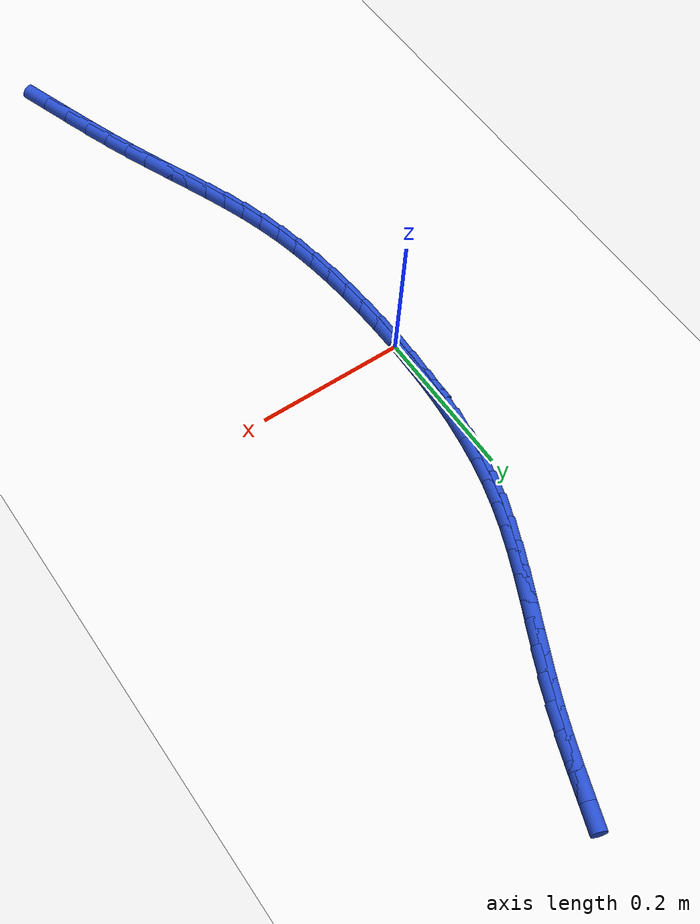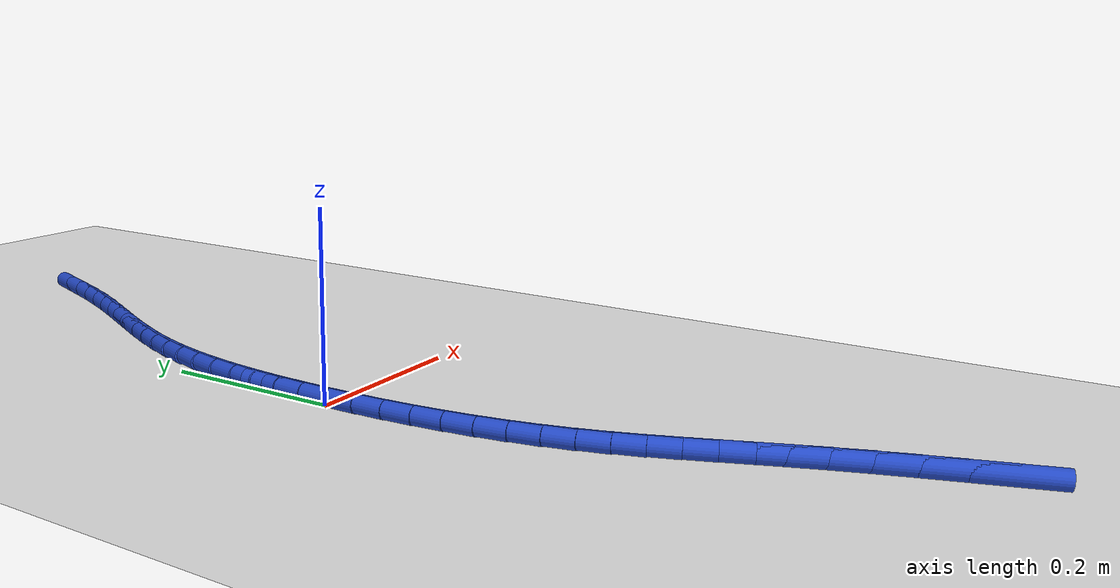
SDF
<sdf version="1.6">
 <world name="default">
  <model name="ground_plane">
   <static>1</static>
   <link name="link">
    <collision name="collision">
     <geometry><plane><normal>0 0 1</normal><size>100 100</size></plane></geometry>
     <surface><friction><ode><mu>100</mu><mu2>50</mu2></ode></friction></surface>
    </collision>
    <visual name="visual">
     <cast_shadows>0</cast_shadows>
     <geometry><plane><normal>0 0 1</normal><size>100 100</size></plane></geometry>
     <material>
      <script><uri>file://media/materials/scripts/gazebo.material</uri><name>Gazebo/WhiteGlow</name></script>
     </material>
    </visual>
   </link>
  </model>
  <model name="line">
   <link name="link_0">
    <pose>8.673617379884035e-19 5.551115123125783e-17 0.01 0 1.57 1.5648938598756141</pose>
    <collision name="collision">
     <geometry><cylinder><radius>0.01</radius><length>0.08</length></cylinder></geometry>
    </collision>
    <visual name="visual">
     <material>
      <script><name>Gazebo/Blue</name><uri>file://media/materials/scripts/gazebo.material</uri></script>
     </material>
     <geometry><cylinder><radius>0.01</radius><length>0.08</length></cylinder></geometry>
    </visual>
   </link>
   <link name="link_1">
    <pose>0.00019472981077579024 0.03299087517620522 0.01 0 1.57 1.537072120736988</pose>
    <collision name="collision">
     <geometry><cylinder><radius>0.01</radius><length>0.08</length></cylinder></geometry>
    </collision>
    <visual name="visual">
     <material>
      <script><name>Gazebo/Blue</name><uri>file://media/materials/scripts/gazebo.material</uri></script>
     </material>
     <geometry><cylinder><radius>0.01</radius><length>0.08</length></cylinder></geometry>
    </visual>
   </link>
   <link name="link_2">
    <pose>0.0013032265724894246 0.0658478826522461 0.01 0 1.57 1.5053583056765305</pose>
    <collision name="collision">
     <geometry><cylinder><radius>0.01</radius><length>0.08</length></cylinder></geometry>
    </collision>
    <visual name="visual">
     <material>
      <script><name>Gazebo/Blue</name><uri>file://media/materials/scripts/gazebo.material</uri></script>
     </material>
     <geometry><cylinder><radius>0.01</radius><length>0.08</length></cylinder></geometry>
    </visual>
   </link>
   <link name="link_3">
    <pose>0.0034424732072917373 0.09849239439355043 0.01 0 1.57 1.4695475857500278</pose>
    <collision name="collision">
     <geometry><cylinder><radius>0.01</radius><length>0.08</length></cylinder></geometry>
    </collision>
    <visual name="visual">
     <material>
      <script><name>Gazebo/Blue</name><uri>file://media/materials/scripts/gazebo.material</uri></script>
     </material>
     <geometry><cylinder><radius>0.01</radius><length>0.08</length></cylinder></geometry>
    </visual>
   </link>
   <link name="link_4">
    <pose>0.006729452637333571 0.1308457823655461 0.01 0 1.57 1.4294323296441678</pose>
    <collision name="collision">
     <geometry><cylinder><radius>0.01</radius><length>0.08</length></cylinder></geometry>
    </collision>
    <visual name="visual">
     <material>
      <script><name>Gazebo/Blue</name><uri>file://media/materials/scripts/gazebo.material</uri></script>
     </material>
     <geometry><cylinder><radius>0.01</radius><length>0.08</length></cylinder></geometry>
    </visual>
   </link>
   <link name="link_5">
    <pose>0.011281147784765758 0.16282941853366076 0.01 0 1.57 1.3848194449020697</pose>
    <collision name="collision">
     <geometry><cylinder><radius>0.01</radius><length>0.08</length></cylinder></geometry>
    </collision>
    <visual name="visual">
     <material>
      <script><name>Gazebo/Blue</name><uri>file://media/materials/scripts/gazebo.material</uri></script>
     </material>
     <geometry><cylinder><radius>0.01</radius><length>0.08</length></cylinder></geometry>
    </visual>
   </link>
   <link name="link_6">
    <pose>0.017214541571739128 0.19436467486332223 0.01 0 1.57 1.335553380008307</pose>
    <collision name="collision">
     <geometry><cylinder><radius>0.01</radius><length>0.08</length></cylinder></geometry>
    </collision>
    <visual name="visual">
     <material>
      <script><name>Gazebo/Blue</name><uri>file://media/materials/scripts/gazebo.material</uri></script>
     </material>
     <geometry><cylinder><radius>0.01</radius><length>0.08</length></cylinder></geometry>
    </visual>
   </link>
   <link name="link_7">
    <pose>0.02464661692040453 0.22537292331995823 0.01 0 1.57 1.2815774857083828</pose>
    <collision name="collision">
     <geometry><cylinder><radius>0.01</radius><length>0.08</length></cylinder></geometry>
    </collision>
    <visual name="visual">
     <material>
      <script><name>Gazebo/Blue</name><uri>file://media/materials/scripts/gazebo.material</uri></script>
     </material>
     <geometry><cylinder><radius>0.01</radius><length>0.08</length></cylinder></geometry>
    </visual>
   </link>
   <link name="link_8">
    <pose>0.033693448123322624 0.25577607693114085 0.01 0 1.57 1.2275389181564769</pose>
    <collision name="collision">
     <geometry><cylinder><radius>0.01</radius><length>0.08</length></cylinder></geometry>
    </collision>
    <visual name="visual">
     <material>
      <script><name>Gazebo/Blue</name><uri>file://media/materials/scripts/gazebo.material</uri></script>
     </material>
     <geometry><cylinder><radius>0.01</radius><length>0.08</length></cylinder></geometry>
    </visual>
   </link>
   <link name="link_9">
    <pose>0.04434284580994602 0.28557242595598603 0.01 0 1.57 1.1831659747152563</pose>
    <collision name="collision">
     <geometry><cylinder><radius>0.01</radius><length>0.08</length></cylinder></geometry>
    </collision>
    <visual name="visual">
     <material>
      <script><name>Gazebo/Blue</name><uri>file://media/materials/scripts/gazebo.material</uri></script>
     </material>
     <geometry><cylinder><radius>0.01</radius><length>0.08</length></cylinder></geometry>
    </visual>
   </link>
   <link name="link_10">
    <pose>0.056322996485865265 0.3149148591684351 0.01 0 1.57 1.1499271536958737</pose>
    <collision name="collision">
     <geometry><cylinder><radius>0.01</radius><length>0.08</length></cylinder></geometry>
    </collision>
    <visual name="visual">
     <material>
      <script><name>Gazebo/Blue</name><uri>file://media/materials/scripts/gazebo.material</uri></script>
     </material>
     <geometry><cylinder><radius>0.01</radius><length>0.08</length></cylinder></geometry>
    </visual>
   </link>
   <link name="link_11">
    <pose>0.06933073533798181 0.3439749341288082 0.01 0 1.57 1.1278763799082063</pose>
    <collision name="collision">
     <geometry><cylinder><radius>0.01</radius><length>0.08</length></cylinder></geometry>
    </collision>
    <visual name="visual">
     <material>
      <script><name>Gazebo/Blue</name><uri>file://media/materials/scripts/gazebo.material</uri></script>
     </material>
     <geometry><cylinder><radius>0.01</radius><length>0.08</length></cylinder></geometry>
    </visual>
   </link>
   <link name="link_12">
    <pose>0.0830628975531971 0.3729242083974256 0.01 0 1.57 1.1168914560942909</pose>
    <collision name="collision">
     <geometry><cylinder><radius>0.01</radius><length>0.08</length></cylinder></geometry>
    </collision>
    <visual name="visual">
     <material>
      <script><name>Gazebo/Blue</name><uri>file://media/materials/scripts/gazebo.material</uri></script>
     </material>
     <geometry><cylinder><radius>0.01</radius><length>0.08</length></cylinder></geometry>
    </visual>
   </link>
   <link name="link_13">
    <pose>0.09721631831841256 0.40193423953460766 0.01 0 1.57 1.116760200707132</pose>
    <collision name="collision">
     <geometry><cylinder><radius>0.01</radius><length>0.08</length></cylinder></geometry>
    </collision>
    <visual name="visual">
     <material>
      <script><name>Gazebo/Blue</name><uri>file://media/materials/scripts/gazebo.material</uri></script>
     </material>
     <geometry><cylinder><radius>0.01</radius><length>0.08</length></cylinder></geometry>
    </visual>
   </link>
   <link name="link_14">
    <pose>0.11148783282052956 0.43117658510067436 0.01 0 1.57 1.127224423411209</pose>
    <collision name="collision">
     <geometry><cylinder><radius>0.01</radius><length>0.08</length></cylinder></geometry>
    </collision>
    <visual name="visual">
     <material>
      <script><name>Gazebo/Blue</name><uri>file://media/materials/scripts/gazebo.material</uri></script>
     </material>
     <geometry><cylinder><radius>0.01</radius><length>0.08</length></cylinder></geometry>
    </visual>
   </link>
   <link name="link_15">
    <pose>0.12557427624644954 0.4608228026559458 0.01 0 1.57 1.147984602782549</pose>
    <collision name="collision">
     <geometry><cylinder><radius>0.01</radius><length>0.08</length></cylinder></geometry>
    </collision>
    <visual name="visual">
     <material>
      <script><name>Gazebo/Blue</name><uri>file://media/materials/scripts/gazebo.material</uri></script>
     </material>
     <geometry><cylinder><radius>0.01</radius><length>0.08</length></cylinder></geometry>
    </visual>
   </link>
   <link name="link_16">
    <pose>0.139172483783074 0.49104444976074235 0.01 0 1.57 1.1782766597016914</pose>
    <collision name="collision">
     <geometry><cylinder><radius>0.01</radius><length>0.08</length></cylinder></geometry>
    </collision>
    <visual name="visual">
     <material>
      <script><name>Gazebo/Blue</name><uri>file://media/materials/scripts/gazebo.material</uri></script>
     </material>
     <geometry><cylinder><radius>0.01</radius><length>0.08</length></cylinder></geometry>
    </visual>
   </link>
   <link name="link_17">
    <pose>0.1519902638797746 0.5220050184277414 0.01 0 1.57 1.2069862735411137</pose>
    <collision name="collision">
     <geometry><cylinder><radius>0.01</radius><length>0.08</length></cylinder></geometry>
    </collision>
    <visual name="visual">
     <material>
      <script><name>Gazebo/Blue</name><uri>file://media/materials/scripts/gazebo.material</uri></script>
     </material>
     <geometry><cylinder><radius>0.01</radius><length>0.08</length></cylinder></geometry>
    </visual>
   </link>
   <link name="link_18">
    <pose>0.1640377658721132 0.5536457746152816 0.01 0 1.57 1.222641215555894</pose>
    <collision name="collision">
     <geometry><cylinder><radius>0.01</radius><length>0.08</length></cylinder></geometry>
    </collision>
    <visual name="visual">
     <material>
      <script><name>Gazebo/Blue</name><uri>file://media/materials/scripts/gazebo.material</uri></script>
     </material>
     <geometry><cylinder><radius>0.01</radius><length>0.08</length></cylinder></geometry>
    </visual>
   </link>
   <link name="link_19">
    <pose>0.1756581497875882 0.5856632153619109 0.01 0 1.57 1.2250901159304362</pose>
    <collision name="collision">
     <geometry><cylinder><radius>0.01</radius><length>0.08</length></cylinder></geometry>
    </collision>
    <visual name="visual">
     <material>
      <script><name>Gazebo/Blue</name><uri>file://media/materials/scripts/gazebo.material</uri></script>
     </material>
     <geometry><cylinder><radius>0.01</radius><length>0.08</length></cylinder></geometry>
    </visual>
   </link>
   <link name="link_231">
    <pose>0.16908863140825997 -0.6079927445291399 0.01 0 1.57 -1.2358360370580705</pose>
    <collision name="collision">
     <geometry><cylinder><radius>0.01</radius><length>0.08</length></cylinder></geometry>
    </collision>
    <visual name="visual">
     <material>
      <script><name>Gazebo/Blue</name><uri>file://media/materials/scripts/gazebo.material</uri></script>
     </material>
     <geometry><cylinder><radius>0.01</radius><length>0.08</length></cylinder></geometry>
    </visual>
   </link>
   <link name="link_232">
    <pose>0.1559576468857663 -0.5702683333092606 0.01 0 1.57 -1.2307238027121996</pose>
    <collision name="collision">
     <geometry><cylinder><radius>0.01</radius><length>0.08</length></cylinder></geometry>
    </collision>
    <visual name="visual">
     <material>
      <script><name>Gazebo/Blue</name><uri>file://media/materials/scripts/gazebo.material</uri></script>
     </material>
     <geometry><cylinder><radius>0.01</radius><length>0.08</length></cylinder></geometry>
    </visual>
   </link>
   <link name="link_233">
    <pose>0.14292081357392483 -0.5334222269566211 0.01 0 1.57 -1.2187727682519953</pose>
    <collision name="collision">
     <geometry><cylinder><radius>0.01</radius><length>0.08</length></cylinder></geometry>
    </collision>
    <visual name="visual">
     <material>
      <script><name>Gazebo/Blue</name><uri>file://media/materials/scripts/gazebo.material</uri></script>
     </material>
     <geometry><cylinder><radius>0.01</radius><length>0.08</length></cylinder></geometry>
    </visual>
   </link>
   <link name="link_234">
    <pose>0.12986641212133776 -0.49788296623729505 0.01 0 1.57 -1.1993301098869544</pose>
    <collision name="collision">
     <geometry><cylinder><radius>0.01</radius><length>0.08</length></cylinder></geometry>
    </collision>
    <visual name="visual">
     <material>
      <script><name>Gazebo/Blue</name><uri>file://media/materials/scripts/gazebo.material</uri></script>
     </material>
     <geometry><cylinder><radius>0.01</radius><length>0.08</length></cylinder></geometry>
    </visual>
   </link>
   <link name="link_235">
    <pose>0.1166904239810668 -0.4640594333840989 0.01 0 1.57 -1.1793286438515516</pose>
    <collision name="collision">
     <geometry><cylinder><radius>0.01</radius><length>0.08</length></cylinder></geometry>
    </collision>
    <visual name="visual">
     <material>
      <script><name>Gazebo/Blue</name><uri>file://media/materials/scripts/gazebo.material</uri></script>
     </material>
     <geometry><cylinder><radius>0.01</radius><length>0.08</length></cylinder></geometry>
    </visual>
   </link>
   <link name="link_236">
    <pose>0.10344327118170056 -0.43196625634040536 0.01 0 1.57 -1.1669367908996608</pose>
    <collision name="collision">
     <geometry><cylinder><radius>0.01</radius><length>0.08</length></cylinder></geometry>
    </collision>
    <visual name="visual">
     <material>
      <script><name>Gazebo/Blue</name><uri>file://media/materials/scripts/gazebo.material</uri></script>
     </material>
     <geometry><cylinder><radius>0.01</radius><length>0.08</length></cylinder></geometry>
    </visual>
   </link>
   <link name="link_237">
    <pose>0.09031817854768816 -0.401253517562623 0.01 0 1.57 -1.1636985533449906</pose>
    <collision name="collision">
     <geometry><cylinder><radius>0.01</radius><length>0.08</length></cylinder></geometry>
    </collision>
    <visual name="visual">
     <material>
      <script><name>Gazebo/Blue</name><uri>file://media/materials/scripts/gazebo.material</uri></script>
     </material>
     <geometry><cylinder><radius>0.01</radius><length>0.08</length></cylinder></geometry>
    </visual>
   </link>
   <link name="link_238">
    <pose>0.07751373967261134 -0.37155759416934714 0.01 0 1.57 -1.1706175179183975</pose>
    <collision name="collision">
     <geometry><cylinder><radius>0.01</radius><length>0.08</length></cylinder></geometry>
    </collision>
    <visual name="visual">
     <material>
      <script><name>Gazebo/Blue</name><uri>file://media/materials/scripts/gazebo.material</uri></script>
     </material>
     <geometry><cylinder><radius>0.01</radius><length>0.08</length></cylinder></geometry>
    </visual>
   </link>
   <link name="link_239">
    <pose>0.06522854815005186 -0.3425148632791736 0.01 0 1.57 -1.1883101479516143</pose>
    <collision name="collision">
     <geometry><cylinder><radius>0.01</radius><length>0.08</length></cylinder></geometry>
    </collision>
    <visual name="visual">
     <material>
      <script><name>Gazebo/Blue</name><uri>file://media/materials/scripts/gazebo.material</uri></script>
     </material>
     <geometry><cylinder><radius>0.01</radius><length>0.08</length></cylinder></geometry>
    </visual>
   </link>
   <link name="link_240">
    <pose>0.05366119757359178 -0.3137617020106985 0.01 0 1.57 -1.2168788500800511</pose>
    <collision name="collision">
     <geometry><cylinder><radius>0.01</radius><length>0.08</length></cylinder></geometry>
    </collision>
    <visual name="visual">
     <material>
      <script><name>Gazebo/Blue</name><uri>file://media/materials/scripts/gazebo.material</uri></script>
     </material>
     <geometry><cylinder><radius>0.01</radius><length>0.08</length></cylinder></geometry>
    </visual>
   </link>
   <link name="link_241">
    <pose>0.04301028153681223 -0.28493448748251604 0.01 0 1.57 -1.2557981939451253</pose>
    <collision name="collision">
     <geometry><cylinder><radius>0.01</radius><length>0.08</length></cylinder></geometry>
    </collision>
    <visual name="visual">
     <material>
      <script><name>Gazebo/Blue</name><uri>file://media/materials/scripts/gazebo.material</uri></script>
     </material>
     <geometry><cylinder><radius>0.01</radius><length>0.08</length></cylinder></geometry>
    </visual>
   </link>
   <link name="link_242">
    <pose>0.033474393633295296 -0.25566959681322265 0.01 0 1.57 -1.302917806249685</pose>
    <collision name="collision">
     <geometry><cylinder><radius>0.01</radius><length>0.08</length></cylinder></geometry>
    </collision>
    <visual name="visual">
     <material>
      <script><name>Gazebo/Blue</name><uri>file://media/materials/scripts/gazebo.material</uri></script>
     </material>
     <geometry><cylinder><radius>0.01</radius><length>0.08</length></cylinder></geometry>
    </visual>
   </link>
   <link name="link_243">
    <pose>0.025231893317979377 -0.2256395928069066 0.01 0 1.57 -1.3493842138949104</pose>
    <collision name="collision">
     <geometry><cylinder><radius>0.01</radius><length>0.08</length></cylinder></geometry>
    </collision>
    <visual name="visual">
     <material>
      <script><name>Gazebo/Blue</name><uri>file://media/materials/scripts/gazebo.material</uri></script>
     </material>
     <geometry><cylinder><radius>0.01</radius><length>0.08</length></cylinder></geometry>
    </visual>
   </link>
   <link name="link_244">
    <pose>0.01829357865645682 -0.19481669637727325 0.01 0 1.57 -1.3915682528003115</pose>
    <collision name="collision">
     <geometry><cylinder><radius>0.01</radius><length>0.08</length></cylinder></geometry>
    </collision>
    <visual name="visual">
     <material>
      <script><name>Gazebo/Blue</name><uri>file://media/materials/scripts/gazebo.material</uri></script>
     </material>
     <geometry><cylinder><radius>0.01</radius><length>0.08</length></cylinder></geometry>
    </visual>
   </link>
   <link name="link_245">
    <pose>0.012587466356126857 -0.16332117033123816 0.01 0 1.57 -1.4298669926042964</pose>
    <collision name="collision">
     <geometry><cylinder><radius>0.01</radius><length>0.08</length></cylinder></geometry>
    </collision>
    <visual name="visual">
     <material>
      <script><name>Gazebo/Blue</name><uri>file://media/materials/scripts/gazebo.material</uri></script>
     </material>
     <geometry><cylinder><radius>0.01</radius><length>0.08</length></cylinder></geometry>
    </visual>
   </link>
   <link name="link_246">
    <pose>0.008040986694921889 -0.13127432621580032 0.01 0 1.57 -1.464677012167831</pose>
    <collision name="collision">
     <geometry><cylinder><radius>0.01</radius><length>0.08</length></cylinder></geometry>
    </collision>
    <visual name="visual">
     <material>
      <script><name>Gazebo/Blue</name><uri>file://media/materials/scripts/gazebo.material</uri></script>
     </material>
     <geometry><cylinder><radius>0.01</radius><length>0.08</length></cylinder></geometry>
    </visual>
   </link>
   <link name="link_247">
    <pose>0.004581569950774316 -0.09879747557795857 0.01 0 1.57 -1.496360890110297</pose>
    <collision name="collision">
     <geometry><cylinder><radius>0.01</radius><length>0.08</length></cylinder></geometry>
    </collision>
    <visual name="visual">
     <material>
      <script><name>Gazebo/Blue</name><uri>file://media/materials/scripts/gazebo.material</uri></script>
     </material>
     <geometry><cylinder><radius>0.01</radius><length>0.08</length></cylinder></geometry>
    </visual>
   </link>
   <link name="link_248">
    <pose>0.0021366464016165437 -0.06601192996471202 0.01 0 1.57 -1.525245008189747</pose>
    <collision name="collision">
     <geometry><cylinder><radius>0.01</radius><length>0.08</length></cylinder></geometry>
    </collision>
    <visual name="visual">
     <material>
      <script><name>Gazebo/Blue</name><uri>file://media/materials/scripts/gazebo.material</uri></script>
     </material>
     <geometry><cylinder><radius>0.01</radius><length>0.08</length></cylinder></geometry>
    </visual>
   </link>
   <link name="link_249">
    <pose>0.000633646325380974 -0.03303900092305955 0.01 0 1.57 -1.5516199402602358</pose>
    <collision name="collision">
     <geometry><cylinder><radius>0.01</radius><length>0.08</length></cylinder></geometry>
    </collision>
    <visual name="visual">
     <material>
      <script><name>Gazebo/Blue</name><uri>file://media/materials/scripts/gazebo.material</uri></script>
     </material>
     <geometry><cylinder><radius>0.01</radius><length>0.08</length></cylinder></geometry>
    </visual>
   </link>
   <link name="link_250">
    <pose>1.2576745200831851e-17 -1.3877787807814457e-16 0.01 0 1.57 1.5658503665122845</pose>
    <collision name="collision">
     <geometry><cylinder><radius>0.01</radius><length>0.08</length></cylinder></geometry>
    </collision>
    <visual name="visual">
     <material>
      <script><name>Gazebo/Blue</name><uri>file://media/materials/scripts/gazebo.material</uri></script>
     </material>
     <geometry><cylinder><radius>0.01</radius><length>0.08</length></cylinder></geometry>
    </visual>
   </link>
   <link name="link_251">
    <pose>0.00016313770340606023 0.03298376125746725 0.01 0 1.57 1.5437554501571062</pose>
    <collision name="collision">
     <geometry><cylinder><radius>0.01</radius><length>0.08</length></cylinder></geometry>
    </collision>
    <visual name="visual">
     <material>
      <script><name>Gazebo/Blue</name><uri>file://media/materials/scripts/gazebo.material</uri></script>
     </material>
     <geometry><cylinder><radius>0.01</radius><length>0.08</length></cylinder></geometry>
    </visual>
   </link>
   <link name="link_252">
    <pose>0.0010504897135315194 0.06579097130234363 0.01 0 1.57 1.554830603336224</pose>
    <collision name="collision">
     <geometry><cylinder><radius>0.01</radius><length>0.08</length></cylinder></geometry>
    </collision>
    <visual name="visual">
     <material>
      <script><name>Gazebo/Blue</name><uri>file://media/materials/scripts/gazebo.material</uri></script>
     </material>
     <geometry><cylinder><radius>0.01</radius><length>0.08</length></cylinder></geometry>
    </visual>
   </link>
  </model>
 </world>
</sdf>
